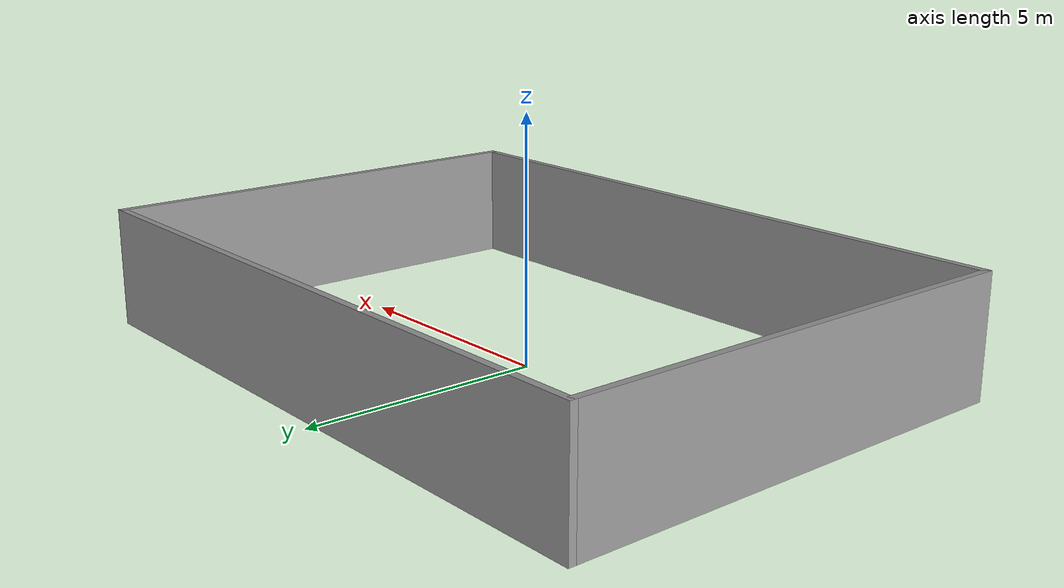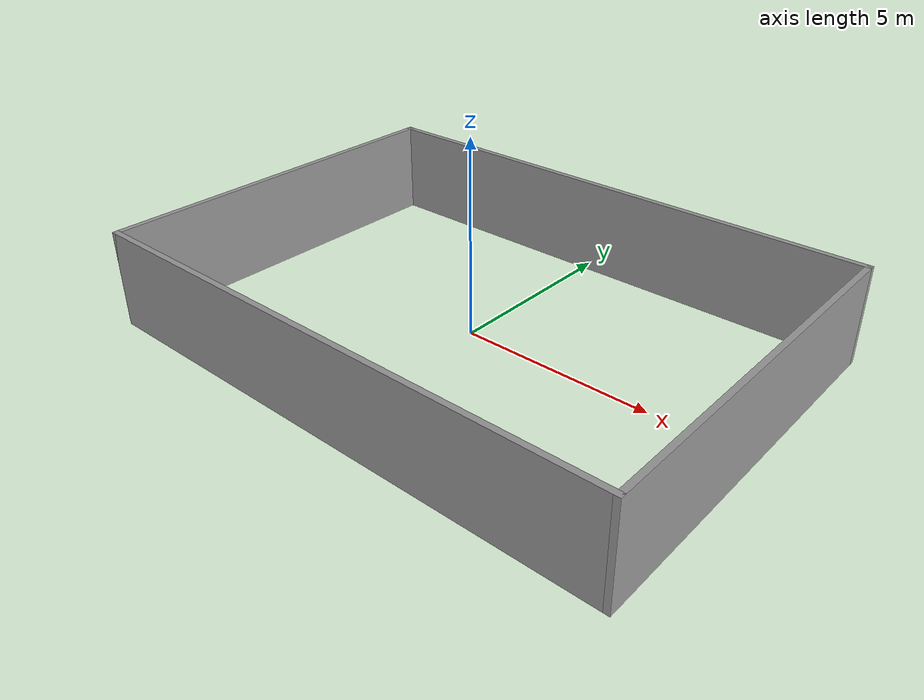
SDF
<?xml version='1.0'?>
<sdf version='1.7'>
  <model name='sqare_area'>
    <pose>0.421273 -0.180852 0 0 -0 0</pose>
    <link name='Wall_0'>
      <collision name='Wall_0_Collision'>
        <geometry>
          <box>
            <size>10 0.15 2.5</size>
          </box>
        </geometry>
        <pose>0 0 1.25 0 -0 0</pose>
      </collision>
      <visual name='Wall_0_Visual'>
        <pose>0 0 1.25 0 -0 0</pose>
        <geometry>
          <box>
            <size>10 0.15 2.5</size>
          </box>
        </geometry>
        <material>
          <script>
            <uri>file://media/materials/scripts/gazebo.material</uri>
            <name>Gazebo/Grey</name>
          </script>
          <ambient>1 1 1 1</ambient>
        </material>
        <meta>
          <layer>0</layer>
        </meta>
      </visual>
      <pose>-7.05 -0 0 0 -0 -1.5708</pose>
    </link>
    <link name='Wall_2'>
      <collision name='Wall_2_Collision'>
        <geometry>
          <box>
            <size>14.25 0.15 2.5</size>
          </box>
        </geometry>
        <pose>0 0 1.25 0 -0 0</pose>
      </collision>
      <visual name='Wall_2_Visual'>
        <pose>0 0 1.25 0 -0 0</pose>
        <geometry>
          <box>
            <size>14.25 0.15 2.5</size>
          </box>
        </geometry>
        <material>
          <script>
            <uri>file://media/materials/scripts/gazebo.material</uri>
            <name>Gazebo/Grey</name>
          </script>
          <ambient>1 1 1 1</ambient>
        </material>
        <meta>
          <layer>0</layer>
        </meta>
      </visual>
      <pose>0 -4.925 0 0 -0 0</pose>
    </link>
    <link name='Wall_3'>
      <collision name='Wall_3_Collision'>
        <geometry>
          <box>
            <size>10 0.15 2.5</size>
          </box>
        </geometry>
        <pose>0 0 1.25 0 -0 0</pose>
      </collision>
      <visual name='Wall_3_Visual'>
        <pose>0 0 1.25 0 -0 0</pose>
        <geometry>
          <box>
            <size>10 0.15 2.5</size>
          </box>
        </geometry>
        <material>
          <script>
            <uri>file://media/materials/scripts/gazebo.material</uri>
            <name>Gazebo/Grey</name>
          </script>
          <ambient>1 1 1 1</ambient>
        </material>
        <meta>
          <layer>0</layer>
        </meta>
      </visual>
      <pose>7.05 -0 0 0 -0 1.5708</pose>
    </link>
    <link name='Wall_7'>
      <collision name='Wall_7_Collision'>
        <geometry>
          <box>
            <size>14.25 0.15 2.5</size>
          </box>
        </geometry>
        <pose>0 0 1.25 0 -0 0</pose>
      </collision>
      <visual name='Wall_7_Visual'>
        <pose>0 0 1.25 0 -0 0</pose>
        <geometry>
          <box>
            <size>14.25 0.15 2.5</size>
          </box>
        </geometry>
        <material>
          <script>
            <uri>file://media/materials/scripts/gazebo.material</uri>
            <name>Gazebo/Grey</name>
          </script>
          <ambient>1 1 1 1</ambient>
        </material>
        <meta>
          <layer>0</layer>
        </meta>
      </visual>
      <pose>0 4.925 0 0 -0 0</pose>
    </link>
    <static>1</static>
  </model>
</sdf>
